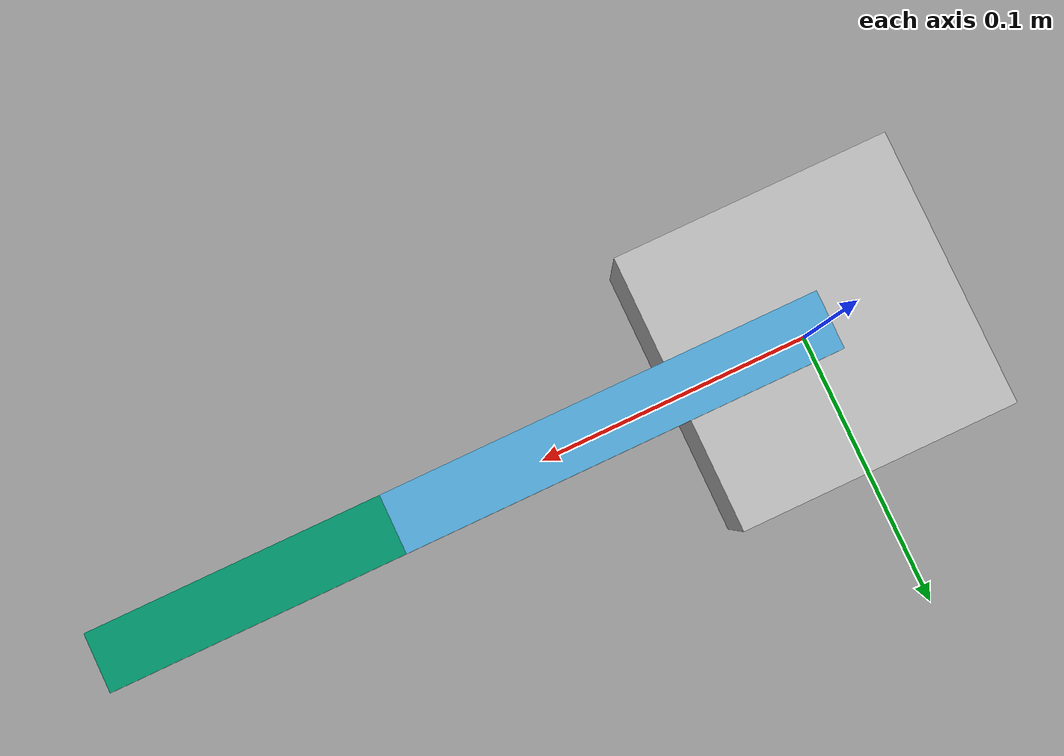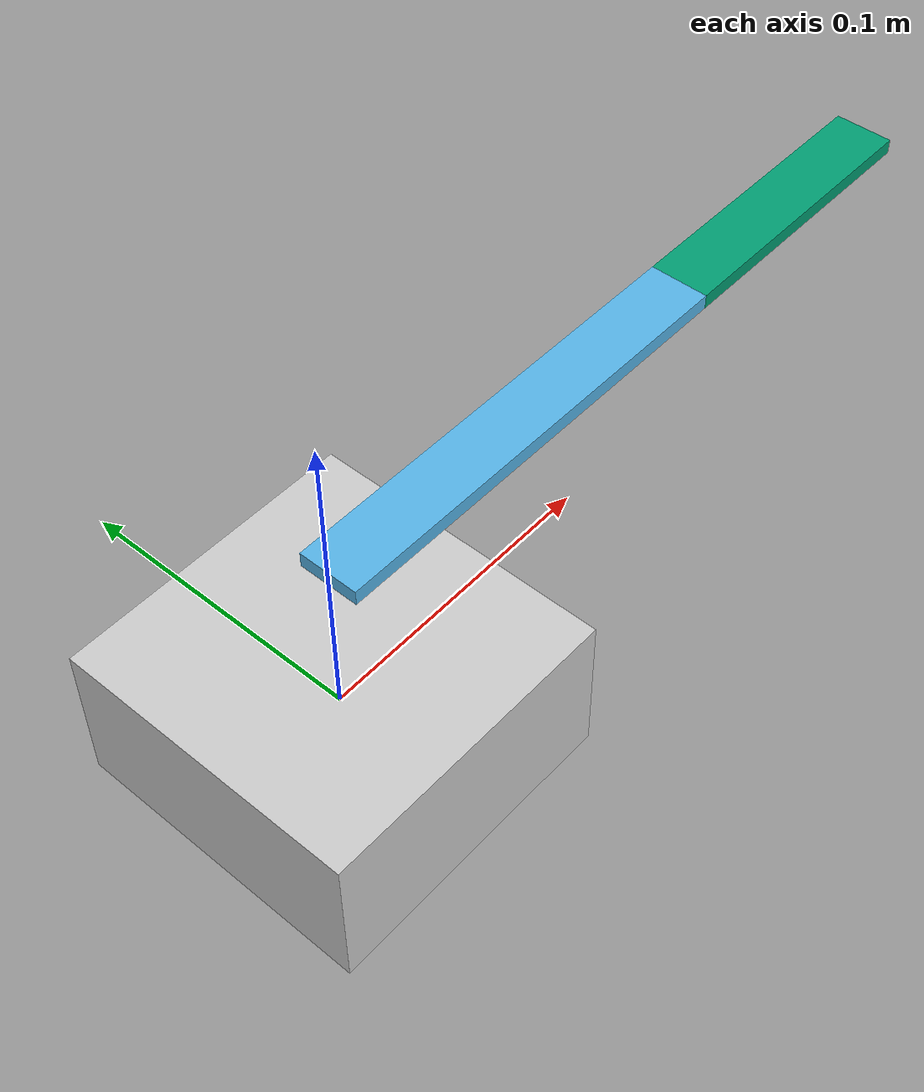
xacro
<?xml version="1.0"?>
<!-- |    One One finger with two links. The top finger tip is rectangle			   | -->
<robot name="3FingersRobot" xmlns:xacro="http://www.ros.org/wiki.xacro">
	<xacro:property name="l1" value="0.15"/>
	<xacro:property name="l2" value="0.1"/>
	<xacro:property name="finger_width" value="0.02"/>
	<xacro:property name="finger_thick" value="0.005"/>
	<xacro:property name="m1" value="0.5"/>
	<xacro:property name="m2" value="0.5"/>

	<material name="white">
		<color rgba="0.8 0.8 0.8 1"/>
	</material>

	<material name="blue">
		<color rgba="0 0 0.8 1"/>
	</material>

	<material name="green">
		<color rgba="0 0.8 0 1"/>
	</material>

	<link name="base_link">
		<visual>
			<geometry>
				<box size="0.1 0.1 0.05"/>
			</geometry>
			<material name="white" />
		</visual>
		<collision>
			<geometry>
				<box size="0.1 0.1 0.05"/>
			</geometry>
		</collision>
		<inertial>
			<mass value="1"/>
			<inertia ixx="1e-3" iyy="1e-3" izz="1e-3" ixy="0" ixz="0" iyz="0"/>
			<origin xyz="0 0 0" />
		</inertial>
	</link>

	<link name="root_finger">
		<visual>
			<geometry>
				<box size="${l1} ${finger_width} ${finger_thick}"/>
			</geometry>
			<origin xyz="${l1/2.0} 0 0"/>
		</visual>
		<collision>
			<geometry>
				<box size="${l1} ${finger_width} ${finger_thick}"/>
			</geometry>
			<origin xyz="${l1/2.0} 0 0"/>
		</collision>
		<inertial>
			<origin xyz="${l1/2.0} 0 0" />
			<mass value="${m1}" />
			<inertia
				ixx="${1/12.0*m1*(finger_thick*finger_thick+finger_width*finger_width)}"
				iyy="${1/12.0*m1*(l1*l1+finger_thick*finger_thick)}"
				izz="${1/12.0*m1*(l1*l1+finger_width*finger_width)}"
				ixy="0" iyz="0" ixz="0"/>
		</inertial>
	</link>

	<link name="top_finger">
		<visual>
			<geometry>
				<box size="${l2} ${finger_width} ${finger_thick}"/>
			</geometry>
			<origin xyz="${l2/2.0} 0 0"/>
		</visual>
		<collision>
			<geometry>
				<box size="${l2} ${finger_width} ${finger_thick}"/>
			</geometry>
			<origin xyz="${l2/2.0} 0 0"/>
		</collision>
		<inertial>
			<origin xyz="${l2/2.0} 0 0" />
			<mass value="${m2}" />
			<inertia
				ixx="${1/12.0*m2*(finger_thick*finger_thick+finger_width*finger_width)}"
				iyy="${1/12.0*m2*(l2*l2+finger_thick*finger_thick)}"
				izz="${1/12.0*m2*(l2*l2+finger_width*finger_width)}"
				ixy="0" iyz="0" ixz="0"/>
		</inertial>
	</link>

	<joint name="base_to_root_joint" type="revolute">
		<parent link="base_link"/>
		<child link="root_finger" />
		<origin xyz="0 0 ${0.05+finger_thick/2.0}"/>
		<axis xyz="0 0 1"/>
		<limit effort="1000.0" lower="-3.14" upper="3.14"  velocity="0.5"/>
		<dynamics damping="0" friction="0"/>
	</joint>

	<joint name="root_to_top_joint" type="revolute">
		<parent link="root_finger"/>
		<child link="top_finger" />
		<origin xyz="${l1} 0 0"/>
		<axis xyz="0 0 1"/>
		<limit effort="1000.0" lower="-3.14" upper="3.14"  velocity="0.5"/>
		<dynamics damping="0" friction="0"/>
	</joint>
</robot>
